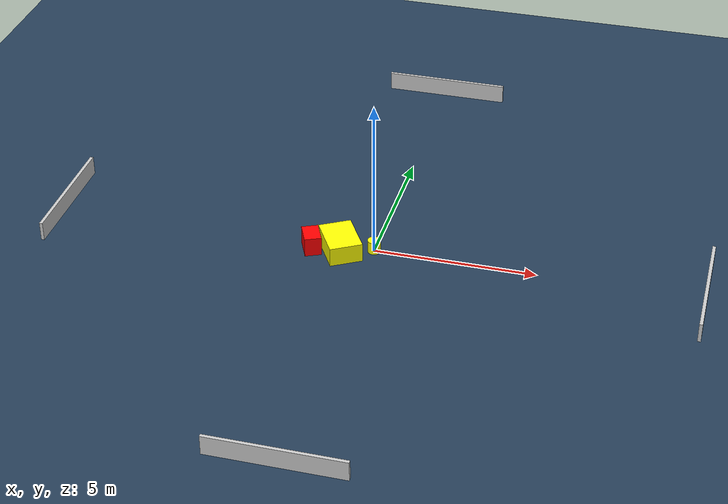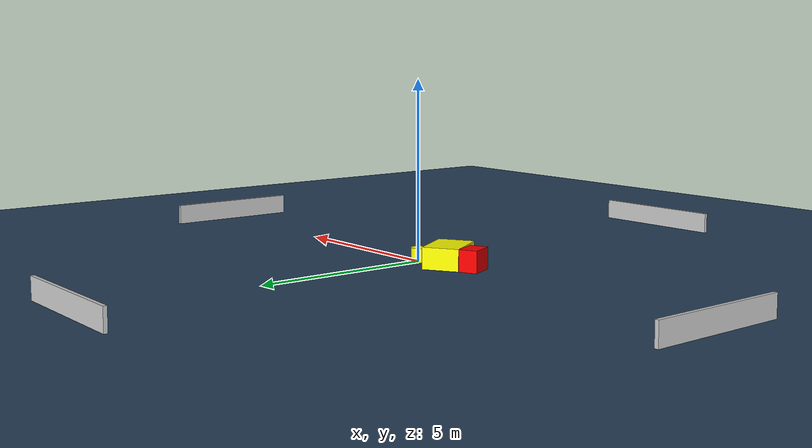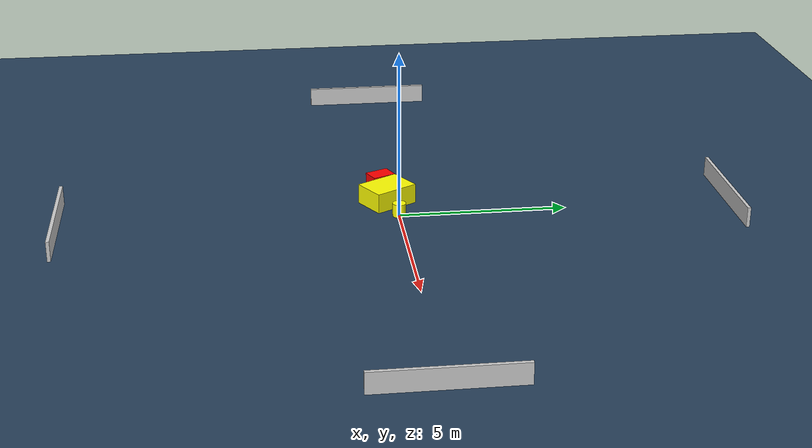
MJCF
<?xml version="1.0" ?>
<mujoco model="generated_environment">
  <option timestep="0.01" integrator="RK4" cone="elliptic"/>
  <default>
    <geom density="1"/>
  </default>
  <asset>
    <texture builtin="gradient" height="3072" name="skybox" rgb1="0.3 0.5 0.7" rgb2="0 0 0" type="skybox" width="512"/>
    <texture builtin="checker" height="300" name="groundplane" rgb1="0.2 0.3 0.4" rgb2="0.1 0.2 0.3" type="2d" width="300"/>
    <material name="groundplane" reflectance="0.2" texrepeat="5 5" texture="groundplane"/>
  </asset>
  <worldbody>
    <light dir="0 0 -1" directional="true" pos="0 0 1.5"/>
    <geom condim="3" friction="0.5 0.005 0.001" material="groundplane" name="floor" pos="0 0 0" size="0 0 0.05" type="plane"/>
    <body name="walls">
      <geom name="wall_1" condim="4" pos="-10.0 0.0 0.3" rgba="0.800000011920929 0.800000011920929 0.800000011920929 1.0" size="0.05 2.0 0.3" type="box"/>
      <geom name="wall_2" condim="4" pos="10.0 0.0 0.3" rgba="0.800000011920929 0.800000011920929 0.800000011920929 1.0" size="0.05 2.0 0.3" type="box"/>
      <geom name="wall_3" condim="4" pos="0.0 -10.0 0.3" rgba="0.800000011920929 0.800000011920929 0.800000011920929 1.0" size="2.0 0.05 0.3" type="box"/>
      <geom name="wall_4" condim="4" pos="0.0 10.0 0.3" rgba="0.800000011920929 0.800000011920929 0.800000011920929 1.0" size="2.0 0.05 0.3" type="box"/>
    </body>
    <body name="robot">
      <joint name="joint_x" type="slide" pos="0 0 0" axis="1 0 0"/>
      <joint name="joint_y" type="slide" pos="0 0 0" axis="0 1 0"/>
      <geom name="robot" type="cylinder" pos="0.0 0.0 0.2" size="0.2 0.2 0.0" mass="5.0" friction="1.0 0.005 0.0001" condim="4" rgba="1.0 1.0 0.0 1.0"/>
    </body>
    <body name="obstacle_1_movable">
      <geom name="obstacle_1_movable" condim="4" pos="-0.9917652214447978 -0.256176410972788 0.3" euler="0 0 300.5606532792984" friction="0.0 0.005 0.001" rgba="1.0 1.0 0.0 1.0" size="0.6886828146470247 0.5079662379361229 0.3" type="box" mass="0.1"/>
      <joint type="free"/>
    </body>
    <body name="obstacle_2_static">
      <geom name="obstacle_2_static" condim="4" pos="-1.8733556309103132 -0.36186226727547494 0.3" euler="0 0 204.3674570309762" friction="0.0 0.005 0.001" rgba="1.0 0.0 0.0 1.0" size="0.25916076100204344 0.3639356559713105 0.3" type="box"/>
    </body>
  </worldbody>
  <actuator>
    <motor name="actuator_x" joint="joint_x" gear="1" ctrlrange="-1 1"/>
    <motor name="actuator_y" joint="joint_y" gear="1" ctrlrange="-1 1"/>
  </actuator>
</mujoco>
